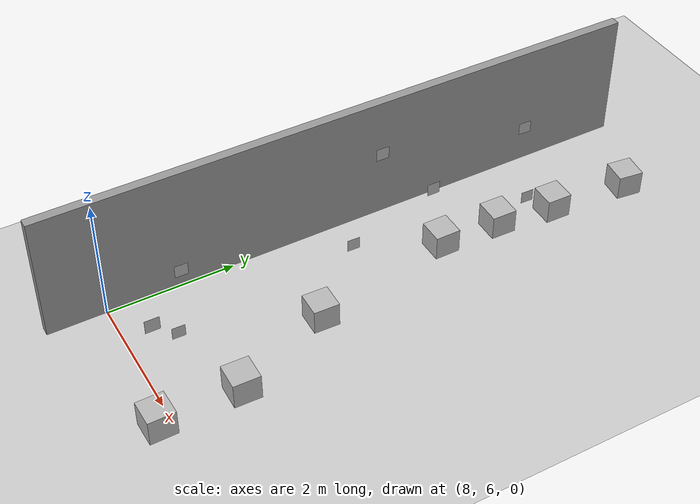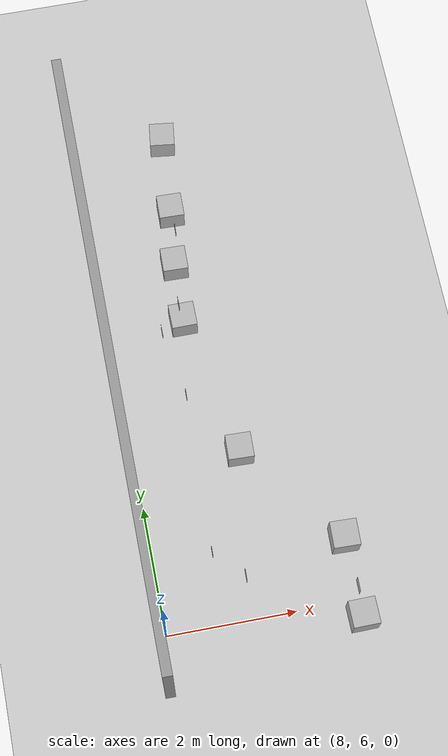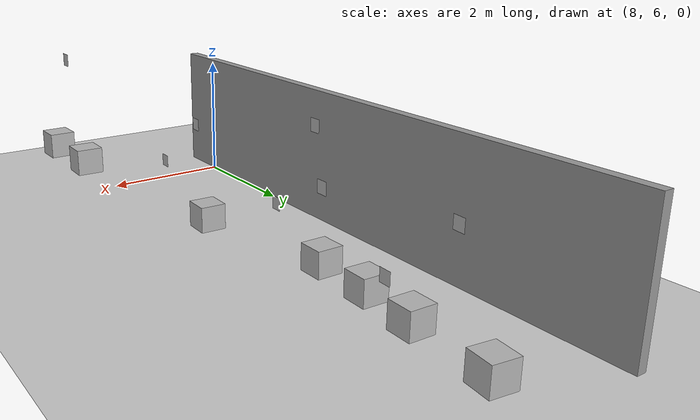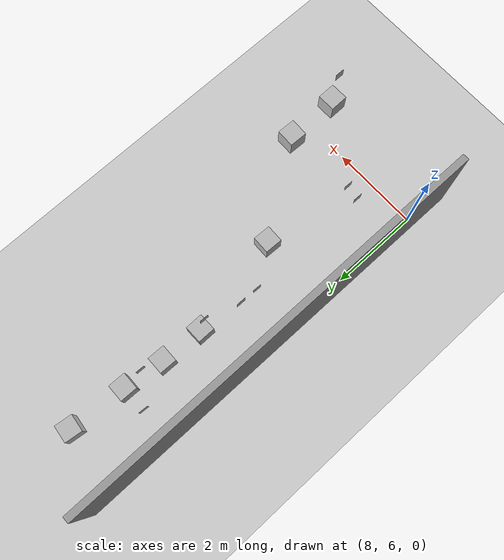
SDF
<sdf version="1.6">
 <world name="default">
  <model name="ground_plane">
   <static>1</static>
   <link name="link">
    <collision name="collision">
     <geometry><plane><normal>0 0 1</normal><size>300 300</size></plane></geometry>
     <surface>
      <contact><collide_bitmask>65535</collide_bitmask></contact>
      <friction><ode><mu>100</mu><mu2>50</mu2></ode></friction>
     </surface>
    </collision>
    <visual name="visual">
     <geometry><plane><normal>0 0 1</normal><size>100 100</size></plane></geometry>
     <material>
      <script><uri>file://media/materials/scripts/gazebo.material</uri><name>Gazebo/Grey</name></script>
     </material>
    </visual>
   </link>
  </model>
  <model name="Estanterias2">
   <link name="Wall_7">
    <pose>-9.54199 -5.19373 -0.244468 0 -0 1.5708</pose>
    <inertial>
     <inertia><ixx>0</ixx><ixy>0</ixy><ixz>0</ixz><iyy>0</iyy><iyz>0</iyz><izz>0</izz></inertia>
     <mass>0</mass>
    </inertial>
    <visual name="Wall_7_Visual">
     <pose>0 0 1.25 0 -0 0</pose>
     <geometry><box><size>9.74609 0.15 2.08966</size></box></geometry>
     <material>
      <script><uri>file://media/materials/scripts/gazebo.material</uri><name>Gazebo/Grey</name></script>
      <ambient>1 1 1 1</ambient>
      <shader type="pixel"/>
      <diffuse>0.7 0.7 0.7 1</diffuse>
      <specular>0.01 0.01 0.01 1</specular>
      <emissive>0 0 0 1</emissive>
     </material>
     <meta><layer>0</layer></meta>
    </visual>
    <collision name="Wall_7_Collision">
     <pose>0 0 1.25 0 -0 0</pose>
     <geometry><box><size>9.74609 0.15 2.08966</size></box></geometry>
     <surface>
      <friction>
       <ode><mu>1</mu><mu2>1</mu2><fdir1>0 0 0</fdir1><slip1>0</slip1><slip2>0</slip2></ode>
       <torsional>
        <coefficient>1</coefficient>
        <patch_radius>0</patch_radius>
        <surface_radius>0</surface_radius>
        <use_patch_radius>1</use_patch_radius>
        <ode><slip>0</slip></ode>
       </torsional>
      </friction>
      <bounce><restitution_coefficient>0</restitution_coefficient><threshold>1e+06</threshold></bounce>
      <contact>
       <collide_without_contact>0</collide_without_contact>
       <collide_without_contact_bitmask>1</collide_without_contact_bitmask>
       <collide_bitmask>1</collide_bitmask>
       <ode>
        <soft_cfm>0</soft_cfm>
        <soft_erp>0.2</soft_erp>
        <kp>1e+13</kp>
        <kd>1</kd>
        <max_vel>0.01</max_vel>
        <min_depth>0</min_depth>
       </ode>
       <bullet>
        <split_impulse>1</split_impulse>
        <split_impulse_penetration_threshold>-0.01</split_impulse_penetration_threshold>
        <soft_cfm>0</soft_cfm>
        <soft_erp>0.2</soft_erp>
        <kp>1e+13</kp>
        <kd>1</kd>
       </bullet>
      </contact>
     </surface>
    </collision>
   </link>
   <static>1</static>
   <pose>17.4434 15.1661 0 0 -0 0</pose>
  </model>
  <model name="CuboQR17">
   <link name="link">
    <pose>0 -0 1.69043 0 -0 0</pose>
    <inertial>
     <mass>0.39</mass>
     <inertia><ixx>0.00058</ixx><ixy>0</ixy><ixz>0</ixz><iyy>0.00058</iyy><iyz>0</iyz><izz>0.00019</izz></inertia>
    </inertial>
    <visual name="visual">
     <geometry><box><size>0.4 0.4 0.4</size></box></geometry>
     <material>
      <script>
       <uri>model://Caja/materials/scripts</uri>
       <uri>model://Caja/materials/textures</uri>
       <name>Caja/Diffuse</name>
      </script>
      <shader type="pixel"/>
     </material>
    </visual>
    <collision name="collision">
     <geometry><box><size>0.4 0.4 0.4</size></box></geometry>
     <surface>
      <friction>
       <ode><mu>1</mu><mu2>1</mu2><fdir1>0 0 0</fdir1><slip1>0</slip1><slip2>0</slip2></ode>
       <torsional>
        <coefficient>1</coefficient>
        <patch_radius>0</patch_radius>
        <surface_radius>0</surface_radius>
        <use_patch_radius>1</use_patch_radius>
        <ode><slip>0</slip></ode>
       </torsional>
      </friction>
      <bounce><restitution_coefficient>0</restitution_coefficient><threshold>1e+06</threshold></bounce>
      <contact>
       <collide_without_contact>0</collide_without_contact>
       <collide_without_contact_bitmask>1</collide_without_contact_bitmask>
       <collide_bitmask>1</collide_bitmask>
       <ode>
        <soft_cfm>0</soft_cfm>
        <soft_erp>0.2</soft_erp>
        <kp>1e+13</kp>
        <kd>1</kd>
        <max_vel>0.01</max_vel>
        <min_depth>0</min_depth>
       </ode>
       <bullet>
        <split_impulse>1</split_impulse>
        <split_impulse_penetration_threshold>-0.01</split_impulse_penetration_threshold>
        <soft_cfm>0</soft_cfm>
        <soft_erp>0.2</soft_erp>
        <kp>1e+13</kp>
        <kd>1</kd>
       </bullet>
      </contact>
     </surface>
    </collision>
   </link>
   <static>0</static>
   <pose>11.0829 13.9252 0.200011 1.5708 -2.1e-05 -1.69401</pose>
  </model>
  <model name="CuboQR14">
   <link name="link">
    <pose>-1.60696 0.16667 0.249987 0 -0 0</pose>
    <inertial>
     <mass>0.39</mass>
     <inertia><ixx>0.00058</ixx><ixy>0</ixy><ixz>0</ixz><iyy>0.00058</iyy><iyz>0</iyz><izz>0.00019</izz></inertia>
    </inertial>
    <visual name="visual">
     <geometry><box><size>0.4 0.4 0.4</size></box></geometry>
     <material>
      <script>
       <uri>model://Caja/materials/scripts</uri>
       <uri>model://Caja/materials/textures</uri>
       <name>Caja/Diffuse</name>
      </script>
      <shader type="pixel"/>
     </material>
    </visual>
    <collision name="collision">
     <geometry><box><size>0.4 0.4 0.4</size></box></geometry>
     <surface>
      <friction>
       <ode><mu>1</mu><mu2>1</mu2><fdir1>0 0 0</fdir1><slip1>0</slip1><slip2>0</slip2></ode>
       <torsional>
        <coefficient>1</coefficient>
        <patch_radius>0</patch_radius>
        <surface_radius>0</surface_radius>
        <use_patch_radius>1</use_patch_radius>
        <ode><slip>0</slip></ode>
       </torsional>
      </friction>
      <bounce><restitution_coefficient>0</restitution_coefficient><threshold>1e+06</threshold></bounce>
      <contact>
       <collide_without_contact>0</collide_without_contact>
       <collide_without_contact_bitmask>1</collide_without_contact_bitmask>
       <collide_bitmask>1</collide_bitmask>
       <ode>
        <soft_cfm>0</soft_cfm>
        <soft_erp>0.2</soft_erp>
        <kp>1e+13</kp>
        <kd>1</kd>
        <max_vel>0.01</max_vel>
        <min_depth>0</min_depth>
       </ode>
       <bullet>
        <split_impulse>1</split_impulse>
        <split_impulse_penetration_threshold>-0.01</split_impulse_penetration_threshold>
        <soft_cfm>0</soft_cfm>
        <soft_erp>0.2</soft_erp>
        <kp>1e+13</kp>
        <kd>1</kd>
       </bullet>
      </contact>
     </surface>
    </collision>
   </link>
   <static>0</static>
   <pose>10.9121 12.6266 -0.049994 1.3e-05 -0 -0.021</pose>
  </model>
  <model name="CuboQR15">
   <link name="link">
    <pose>-1.6512 -0.722187 0.249968 0 -0 0</pose>
    <inertial>
     <mass>0.39</mass>
     <inertia><ixx>0.00058</ixx><ixy>0</ixy><ixz>0</ixz><iyy>0.00058</iyy><iyz>0</iyz><izz>0.00019</izz></inertia>
    </inertial>
    <visual name="visual">
     <geometry><box><size>0.4 0.4 0.4</size></box></geometry>
     <material>
      <script>
       <uri>model://Caja/materials/scripts</uri>
       <uri>model://Caja/materials/textures</uri>
       <name>Caja/Diffuse</name>
      </script>
      <shader type="pixel"/>
     </material>
    </visual>
    <collision name="collision">
     <geometry><box><size>0.4 0.4 0.4</size></box></geometry>
     <surface>
      <friction>
       <ode><mu>1</mu><mu2>1</mu2><fdir1>0 0 0</fdir1><slip1>0</slip1><slip2>0</slip2></ode>
       <torsional>
        <coefficient>1</coefficient>
        <patch_radius>0</patch_radius>
        <surface_radius>0</surface_radius>
        <use_patch_radius>1</use_patch_radius>
        <ode><slip>0</slip></ode>
       </torsional>
      </friction>
      <bounce><restitution_coefficient>0</restitution_coefficient><threshold>1e+06</threshold></bounce>
      <contact>
       <collide_without_contact>0</collide_without_contact>
       <collide_without_contact_bitmask>1</collide_without_contact_bitmask>
       <collide_bitmask>1</collide_bitmask>
       <ode>
        <soft_cfm>0</soft_cfm>
        <soft_erp>0.2</soft_erp>
        <kp>1e+13</kp>
        <kd>1</kd>
        <max_vel>0.01</max_vel>
        <min_depth>0</min_depth>
       </ode>
       <bullet>
        <split_impulse>1</split_impulse>
        <split_impulse_penetration_threshold>-0.01</split_impulse_penetration_threshold>
        <soft_cfm>0</soft_cfm>
        <soft_erp>0.2</soft_erp>
        <kp>1e+13</kp>
        <kd>1</kd>
       </bullet>
      </contact>
     </surface>
    </collision>
   </link>
   <static>0</static>
   <pose>10.8665 12.5785 -0.049979 -1.6e-05 -0 -0.020546</pose>
  </model>
  <model name="Plano15">
   <link name="link">
    <gravity>0</gravity>
    <pose>0.28671 -1.34804 0.25 0 -0 0</pose>
    <inertial>
     <mass>1e-06</mass>
     <inertia><ixx>0.00058</ixx><ixy>0</ixy><ixz>0</ixz><iyy>0.00058</iyy><iyz>0</iyz><izz>0.00019</izz></inertia>
    </inertial>
    <visual name="visual">
     <geometry><box><size>0.2 1e-06 0.2</size></box></geometry>
     <material>
      <script>
       <uri>model://Plano15/materials/scripts</uri>
       <uri>model://Plano15/materials/textures</uri>
       <name>Plano15/Diffuse</name>
      </script>
      <shader type="pixel"/>
     </material>
     <cast_shadows>0</cast_shadows>
    </visual>
    <collision name="collision">
     <geometry><box><size>0.2 1e-06 0.2</size></box></geometry>
     <surface>
      <friction>
       <ode><mu>1</mu><mu2>1</mu2><fdir1>0 0 0</fdir1><slip1>0</slip1><slip2>0</slip2></ode>
       <torsional>
        <coefficient>1</coefficient>
        <patch_radius>0</patch_radius>
        <surface_radius>0</surface_radius>
        <use_patch_radius>1</use_patch_radius>
        <ode><slip>0</slip></ode>
       </torsional>
      </friction>
      <bounce><restitution_coefficient>0</restitution_coefficient><threshold>1e+06</threshold></bounce>
      <contact>
       <collide_without_contact>0</collide_without_contact>
       <collide_without_contact_bitmask>1</collide_without_contact_bitmask>
       <collide_bitmask>1</collide_bitmask>
       <ode>
        <soft_cfm>0</soft_cfm>
        <soft_erp>0.2</soft_erp>
        <kp>1e+13</kp>
        <kd>1</kd>
        <max_vel>0.01</max_vel>
        <min_depth>0</min_depth>
       </ode>
       <bullet>
        <split_impulse>1</split_impulse>
        <split_impulse_penetration_threshold>-0.01</split_impulse_penetration_threshold>
        <soft_cfm>0</soft_cfm>
        <soft_erp>0.2</soft_erp>
        <kp>1e+13</kp>
        <kd>1</kd>
       </bullet>
      </contact>
     </surface>
    </collision>
   </link>
   <static>0</static>
   <pose>10.6606 12.5838 0.25794 0 0 -1.60068</pose>
  </model>
  <model name="Plano14">
   <link name="link">
    <gravity>0</gravity>
    <pose>1e-06 -2.15575 0.25 0 -0 0</pose>
    <inertial>
     <mass>1e-06</mass>
     <inertia><ixx>0.00058</ixx><ixy>0</ixy><ixz>0</ixz><iyy>0.00058</iyy><iyz>0</iyz><izz>0.00019</izz></inertia>
    </inertial>
    <visual name="visual">
     <geometry><box><size>0.2 1e-06 0.2</size></box></geometry>
     <material>
      <script>
       <uri>model://Plano14/materials/scripts</uri>
       <uri>model://Plano14/materials/textures</uri>
       <name>Plano14/Diffuse</name>
      </script>
      <shader type="pixel"/>
     </material>
     <cast_shadows>0</cast_shadows>
    </visual>
    <collision name="collision">
     <geometry><box><size>0.2 1e-06 0.2</size></box></geometry>
     <surface>
      <friction>
       <ode><mu>1</mu><mu2>1</mu2><fdir1>0 0 0</fdir1><slip1>0</slip1><slip2>0</slip2></ode>
       <torsional>
        <coefficient>1</coefficient>
        <patch_radius>0</patch_radius>
        <surface_radius>0</surface_radius>
        <use_patch_radius>1</use_patch_radius>
        <ode><slip>0</slip></ode>
       </torsional>
      </friction>
      <bounce><restitution_coefficient>0</restitution_coefficient><threshold>1e+06</threshold></bounce>
      <contact>
       <collide_without_contact>0</collide_without_contact>
       <collide_without_contact_bitmask>1</collide_without_contact_bitmask>
       <collide_bitmask>1</collide_bitmask>
       <ode>
        <soft_cfm>0</soft_cfm>
        <soft_erp>0.2</soft_erp>
        <kp>1e+13</kp>
        <kd>1</kd>
        <max_vel>0.01</max_vel>
        <min_depth>0</min_depth>
       </ode>
       <bullet>
        <split_impulse>1</split_impulse>
        <split_impulse_penetration_threshold>-0.01</split_impulse_penetration_threshold>
        <soft_cfm>0</soft_cfm>
        <soft_erp>0.2</soft_erp>
        <kp>1e+13</kp>
        <kd>1</kd>
       </bullet>
      </contact>
     </surface>
    </collision>
   </link>
   <static>0</static>
   <pose>10.7078 12.6284 0.90675 0 0 -1.62849</pose>
  </model>
  <model name="CuboQR27">
   <link name="link">
    <pose>-1.75974 0.132439 0.250007 -0 -0 -0</pose>
    <inertial>
     <mass>0.39</mass>
     <inertia><ixx>0.00058</ixx><ixy>0</ixy><ixz>0</ixz><iyy>0.00058</iyy><iyz>0</iyz><izz>0.00019</izz></inertia>
    </inertial>
    <visual name="visual">
     <geometry><box><size>0.4 0.4 0.4</size></box></geometry>
     <material>
      <script>
       <uri>model://Caja/materials/scripts</uri>
       <uri>model://Caja/materials/textures</uri>
       <name>Caja/Diffuse</name>
      </script>
      <shader type="pixel"/>
     </material>
    </visual>
    <collision name="collision">
     <geometry><box><size>0.4 0.4 0.4</size></box></geometry>
     <surface>
      <friction>
       <ode><mu>1</mu><mu2>1</mu2><fdir1>0 0 0</fdir1><slip1>0</slip1><slip2>0</slip2></ode>
       <torsional>
        <coefficient>1</coefficient>
        <patch_radius>0</patch_radius>
        <surface_radius>0</surface_radius>
        <use_patch_radius>1</use_patch_radius>
        <ode><slip>0</slip></ode>
       </torsional>
      </friction>
      <bounce><restitution_coefficient>0</restitution_coefficient><threshold>1e+06</threshold></bounce>
      <contact>
       <collide_without_contact>0</collide_without_contact>
       <collide_without_contact_bitmask>1</collide_without_contact_bitmask>
       <collide_bitmask>1</collide_bitmask>
       <ode>
        <soft_cfm>0</soft_cfm>
        <soft_erp>0.2</soft_erp>
        <kp>1e+13</kp>
        <kd>1</kd>
        <max_vel>0.01</max_vel>
        <min_depth>0</min_depth>
       </ode>
       <bullet>
        <split_impulse>1</split_impulse>
        <split_impulse_penetration_threshold>-0.01</split_impulse_penetration_threshold>
        <soft_cfm>0</soft_cfm>
        <soft_erp>0.2</soft_erp>
        <kp>1e+13</kp>
        <kd>1</kd>
       </bullet>
      </contact>
     </surface>
    </collision>
   </link>
   <static>0</static>
   <pose>10.9203 10.7818 -0.050003 -2.4e-05 0 0.004224</pose>
  </model>
  <model name="Plano27">
   <link name="link">
    <gravity>0</gravity>
    <pose>-0 -1.62853 0.25 0 -0 0</pose>
    <inertial>
     <mass>1e-06</mass>
     <inertia><ixx>0.00058</ixx><ixy>0</ixy><ixz>0</ixz><iyy>0.00058</iyy><iyz>0</iyz><izz>0.00019</izz></inertia>
    </inertial>
    <visual name="visual">
     <geometry><box><size>0.2 1e-06 0.2</size></box></geometry>
     <material>
      <script>
       <uri>model://Plano27/materials/scripts</uri>
       <uri>model://Plano27/materials/textures</uri>
       <name>Plano27/Diffuse</name>
      </script>
      <shader type="pixel"/>
     </material>
     <cast_shadows>0</cast_shadows>
    </visual>
    <collision name="collision">
     <geometry><box><size>0.2 1e-06 0.2</size></box></geometry>
     <surface>
      <friction>
       <ode><mu>1</mu><mu2>1</mu2><fdir1>0 0 0</fdir1><slip1>0</slip1><slip2>0</slip2></ode>
       <torsional>
        <coefficient>1</coefficient>
        <patch_radius>0</patch_radius>
        <surface_radius>0</surface_radius>
        <use_patch_radius>1</use_patch_radius>
        <ode><slip>0</slip></ode>
       </torsional>
      </friction>
      <bounce><restitution_coefficient>0</restitution_coefficient><threshold>1e+06</threshold></bounce>
      <contact>
       <collide_without_contact>0</collide_without_contact>
       <collide_without_contact_bitmask>1</collide_without_contact_bitmask>
       <collide_bitmask>1</collide_bitmask>
       <ode>
        <soft_cfm>0</soft_cfm>
        <soft_erp>0.2</soft_erp>
        <kp>1e+13</kp>
        <kd>1</kd>
        <max_vel>0.01</max_vel>
        <min_depth>0</min_depth>
       </ode>
       <bullet>
        <split_impulse>1</split_impulse>
        <split_impulse_penetration_threshold>-0.01</split_impulse_penetration_threshold>
        <soft_cfm>0</soft_cfm>
        <soft_erp>0.2</soft_erp>
        <kp>1e+13</kp>
        <kd>1</kd>
       </bullet>
      </contact>
     </surface>
    </collision>
   </link>
   <static>0</static>
   <pose>10.7156 10.7789 0.90002 0 0 -1.57306</pose>
  </model>
  <model name="Plano29">
   <link name="link">
    <gravity>0</gravity>
    <pose>-0 -2.02242 0.25 0 -0 0</pose>
    <inertial>
     <mass>1e-06</mass>
     <inertia><ixx>0.00058</ixx><ixy>0</ixy><ixz>0</ixz><iyy>0.00058</iyy><iyz>0</iyz><izz>0.00019</izz></inertia>
    </inertial>
    <visual name="visual">
     <geometry><box><size>0.2 1e-06 0.2</size></box></geometry>
     <material>
      <script>
       <uri>model://Plano29/materials/scripts</uri>
       <uri>model://Plano29/materials/textures</uri>
       <name>Plano29/Diffuse</name>
      </script>
      <shader type="pixel"/>
     </material>
     <cast_shadows>0</cast_shadows>
    </visual>
    <collision name="collision">
     <geometry><box><size>0.2 1e-06 0.2</size></box></geometry>
     <surface>
      <friction>
       <ode><mu>1</mu><mu2>1</mu2><fdir1>0 0 0</fdir1><slip1>0</slip1><slip2>0</slip2></ode>
       <torsional>
        <coefficient>1</coefficient>
        <patch_radius>0</patch_radius>
        <surface_radius>0</surface_radius>
        <use_patch_radius>1</use_patch_radius>
        <ode><slip>0</slip></ode>
       </torsional>
      </friction>
      <bounce><restitution_coefficient>0</restitution_coefficient><threshold>1e+06</threshold></bounce>
      <contact>
       <collide_without_contact>0</collide_without_contact>
       <collide_without_contact_bitmask>1</collide_without_contact_bitmask>
       <collide_bitmask>1</collide_bitmask>
       <ode>
        <soft_cfm>0</soft_cfm>
        <soft_erp>0.2</soft_erp>
        <kp>1e+13</kp>
        <kd>1</kd>
        <max_vel>0.01</max_vel>
        <min_depth>0</min_depth>
       </ode>
       <bullet>
        <split_impulse>1</split_impulse>
        <split_impulse_penetration_threshold>-0.01</split_impulse_penetration_threshold>
        <soft_cfm>0</soft_cfm>
        <soft_erp>0.2</soft_erp>
        <kp>1e+13</kp>
        <kd>1</kd>
       </bullet>
      </contact>
     </surface>
    </collision>
   </link>
   <static>0</static>
   <pose>10.7522 10.1107 1.5598 0 0 -1.57894</pose>
  </model>
  <model name="Plano12">
   <link name="link">
    <gravity>0</gravity>
    <pose>-0 -1.74134 0.25 0 -0 0</pose>
    <inertial>
     <mass>1e-06</mass>
     <inertia><ixx>0.00058</ixx><ixy>0</ixy><ixz>0</ixz><iyy>0.00058</iyy><iyz>0</iyz><izz>0.00019</izz></inertia>
    </inertial>
    <visual name="visual">
     <geometry><box><size>0.2 1e-06 0.2</size></box></geometry>
     <material>
      <script>
       <uri>model://Plano12/materials/scripts</uri>
       <uri>model://Plano12/materials/textures</uri>
       <name>Plano12/Diffuse</name>
      </script>
      <shader type="pixel"/>
     </material>
     <cast_shadows>0</cast_shadows>
    </visual>
    <collision name="collision">
     <geometry><box><size>0.2 1e-06 0.2</size></box></geometry>
     <surface>
      <friction>
       <ode><mu>1</mu><mu2>1</mu2><fdir1>0 0 0</fdir1><slip1>0</slip1><slip2>0</slip2></ode>
       <torsional>
        <coefficient>1</coefficient>
        <patch_radius>0</patch_radius>
        <surface_radius>0</surface_radius>
        <use_patch_radius>1</use_patch_radius>
        <ode><slip>0</slip></ode>
       </torsional>
      </friction>
      <bounce><restitution_coefficient>0</restitution_coefficient><threshold>1e+06</threshold></bounce>
      <contact>
       <collide_without_contact>0</collide_without_contact>
       <collide_without_contact_bitmask>1</collide_without_contact_bitmask>
       <collide_bitmask>1</collide_bitmask>
       <ode>
        <soft_cfm>0</soft_cfm>
        <soft_erp>0.2</soft_erp>
        <kp>1e+13</kp>
        <kd>1</kd>
        <max_vel>0.01</max_vel>
        <min_depth>0</min_depth>
       </ode>
       <bullet>
        <split_impulse>1</split_impulse>
        <split_impulse_penetration_threshold>-0.01</split_impulse_penetration_threshold>
        <soft_cfm>0</soft_cfm>
        <soft_erp>0.2</soft_erp>
        <kp>1e+13</kp>
        <kd>1</kd>
       </bullet>
      </contact>
     </surface>
    </collision>
   </link>
   <static>0</static>
   <pose>10.7037 9.472 0.272564 0 0 -1.59709</pose>
  </model>
  <model name="CuboQR12">
   <link name="link">
    <pose>-1.25153 -0.898488 0.250001 -0 -0 -0</pose>
    <inertial>
     <mass>0.39</mass>
     <inertia><ixx>0.00058</ixx><ixy>0</ixy><ixz>0</ixz><iyy>0.00058</iyy><iyz>0</iyz><izz>0.00019</izz></inertia>
    </inertial>
    <visual name="visual">
     <geometry><box><size>0.4 0.4 0.4</size></box></geometry>
     <material>
      <script>
       <uri>model://Caja/materials/scripts</uri>
       <uri>model://Caja/materials/textures</uri>
       <name>Caja/Diffuse</name>
      </script>
      <shader type="pixel"/>
     </material>
    </visual>
    <collision name="collision">
     <geometry><box><size>0.4 0.4 0.4</size></box></geometry>
     <surface>
      <friction>
       <ode><mu>1</mu><mu2>1</mu2><fdir1>0 0 0</fdir1><slip1>0</slip1><slip2>0</slip2></ode>
       <torsional>
        <coefficient>1</coefficient>
        <patch_radius>0</patch_radius>
        <surface_radius>0</surface_radius>
        <use_patch_radius>1</use_patch_radius>
        <ode><slip>0</slip></ode>
       </torsional>
      </friction>
      <bounce><restitution_coefficient>0</restitution_coefficient><threshold>1e+06</threshold></bounce>
      <contact>
       <collide_without_contact>0</collide_without_contact>
       <collide_without_contact_bitmask>1</collide_without_contact_bitmask>
       <collide_bitmask>1</collide_bitmask>
       <ode>
        <soft_cfm>0</soft_cfm>
        <soft_erp>0.2</soft_erp>
        <kp>1e+13</kp>
        <kd>1</kd>
        <max_vel>0.01</max_vel>
        <min_depth>0</min_depth>
       </ode>
       <bullet>
        <split_impulse>1</split_impulse>
        <split_impulse_penetration_threshold>-0.01</split_impulse_penetration_threshold>
        <soft_cfm>0</soft_cfm>
        <soft_erp>0.2</soft_erp>
        <kp>1e+13</kp>
        <kd>1</kd>
       </bullet>
      </contact>
     </surface>
    </collision>
   </link>
   <static>0</static>
   <pose>10.9042 9.46915 -0.049996 8e-06 -0 -0.031544</pose>
  </model>
  <model name="Plano20">
   <link name="link">
    <gravity>0</gravity>
    <pose>0.051279 -1.40422 0.25 0 -0 0</pose>
    <inertial>
     <mass>1e-06</mass>
     <inertia><ixx>0.00058</ixx><ixy>0</ixy><ixz>0</ixz><iyy>0.00058</iyy><iyz>0</iyz><izz>0.00019</izz></inertia>
    </inertial>
    <visual name="visual">
     <geometry><box><size>0.2 1e-06 0.2</size></box></geometry>
     <material>
      <script>
       <uri>model://Plano20/materials/scripts</uri>
       <uri>model://Plano20/materials/textures</uri>
       <name>Plano20/Diffuse</name>
      </script>
      <shader type="pixel"/>
     </material>
     <cast_shadows>0</cast_shadows>
    </visual>
    <collision name="collision">
     <geometry><box><size>0.2 1e-06 0.2</size></box></geometry>
     <surface>
      <friction>
       <ode><mu>1</mu><mu2>1</mu2><fdir1>0 0 0</fdir1><slip1>0</slip1><slip2>0</slip2></ode>
       <torsional>
        <coefficient>1</coefficient>
        <patch_radius>0</patch_radius>
        <surface_radius>0</surface_radius>
        <use_patch_radius>1</use_patch_radius>
        <ode><slip>0</slip></ode>
       </torsional>
      </friction>
      <bounce><restitution_coefficient>0</restitution_coefficient><threshold>1e+06</threshold></bounce>
      <contact>
       <collide_without_contact>0</collide_without_contact>
       <collide_without_contact_bitmask>1</collide_without_contact_bitmask>
       <collide_bitmask>1</collide_bitmask>
       <ode>
        <soft_cfm>0</soft_cfm>
        <soft_erp>0.2</soft_erp>
        <kp>1e+13</kp>
        <kd>1</kd>
        <max_vel>0.01</max_vel>
        <min_depth>0</min_depth>
       </ode>
       <bullet>
        <split_impulse>1</split_impulse>
        <split_impulse_penetration_threshold>-0.01</split_impulse_penetration_threshold>
        <soft_cfm>0</soft_cfm>
        <soft_erp>0.2</soft_erp>
        <kp>1e+13</kp>
        <kd>1</kd>
       </bullet>
      </contact>
     </surface>
    </collision>
   </link>
   <static>0</static>
   <pose>10.7236 6.60015 0.262989 0 0 -1.59313</pose>
  </model>
  <model name="Plano26_0">
   <link name="link">
    <gravity>0</gravity>
    <pose>0.21886 -1.85494 0.25 0 -0 0</pose>
    <inertial>
     <mass>1e-06</mass>
     <inertia><ixx>0.00058</ixx><ixy>0</ixy><ixz>0</ixz><iyy>0.00058</iyy><iyz>0</iyz><izz>0.00019</izz></inertia>
    </inertial>
    <visual name="visual">
     <geometry><box><size>0.2 1e-06 0.2</size></box></geometry>
     <material>
      <script>
       <uri>model://Plano26/materials/scripts</uri>
       <uri>model://Plano26/materials/textures</uri>
       <name>Plano26/Diffuse</name>
      </script>
      <shader type="pixel"/>
     </material>
     <cast_shadows>0</cast_shadows>
    </visual>
    <collision name="collision">
     <geometry><box><size>0.2 1e-06 0.2</size></box></geometry>
     <surface>
      <friction>
       <ode><mu>1</mu><mu2>1</mu2><fdir1>0 0 0</fdir1><slip1>0</slip1><slip2>0</slip2></ode>
       <torsional>
        <coefficient>1</coefficient>
        <patch_radius>0</patch_radius>
        <surface_radius>0</surface_radius>
        <use_patch_radius>1</use_patch_radius>
        <ode><slip>0</slip></ode>
       </torsional>
      </friction>
      <bounce><restitution_coefficient>0</restitution_coefficient><threshold>1e+06</threshold></bounce>
      <contact>
       <collide_without_contact>0</collide_without_contact>
       <collide_without_contact_bitmask>1</collide_without_contact_bitmask>
       <collide_bitmask>1</collide_bitmask>
       <ode>
        <soft_cfm>0</soft_cfm>
        <soft_erp>0.2</soft_erp>
        <kp>1e+13</kp>
        <kd>1</kd>
        <max_vel>0.01</max_vel>
        <min_depth>0</min_depth>
       </ode>
       <bullet>
        <split_impulse>1</split_impulse>
        <split_impulse_penetration_threshold>-0.01</split_impulse_penetration_threshold>
        <soft_cfm>0</soft_cfm>
        <soft_erp>0.2</soft_erp>
        <kp>1e+13</kp>
        <kd>1</kd>
       </bullet>
      </contact>
     </surface>
    </collision>
   </link>
   <static>0</static>
   <pose>10.7205 7.06672 0.90647 0 0 -1.58759</pose>
  </model>
  <model name="Plano26">
   <link name="link">
    <gravity>0</gravity>
    <pose>0.259182 -0.023465 0.724825 0 -0 0</pose>
    <inertial>
     <mass>1e-06</mass>
     <inertia><ixx>0.00058</ixx><ixy>0</ixy><ixz>0</ixz><iyy>0.00058</iyy><iyz>0</iyz><izz>0.00019</izz></inertia>
    </inertial>
    <visual name="visual">
     <geometry><box><size>0.2 1e-06 0.2</size></box></geometry>
     <material>
      <script>
       <uri>model://Plano26/materials/scripts</uri>
       <uri>model://Plano26/materials/textures</uri>
       <name>Plano26/Diffuse</name>
      </script>
      <shader type="pixel"/>
     </material>
     <cast_shadows>0</cast_shadows>
    </visual>
    <collision name="collision">
     <geometry><box><size>0.2 1e-06 0.2</size></box></geometry>
     <surface>
      <friction>
       <ode><mu>1</mu><mu2>1</mu2><fdir1>0 0 0</fdir1><slip1>0</slip1><slip2>0</slip2></ode>
       <torsional>
        <coefficient>1</coefficient>
        <patch_radius>0</patch_radius>
        <surface_radius>0</surface_radius>
        <use_patch_radius>1</use_patch_radius>
        <ode><slip>0</slip></ode>
       </torsional>
      </friction>
      <bounce><restitution_coefficient>0</restitution_coefficient><threshold>1e+06</threshold></bounce>
      <contact>
       <collide_without_contact>0</collide_without_contact>
       <collide_without_contact_bitmask>1</collide_without_contact_bitmask>
       <collide_bitmask>1</collide_bitmask>
       <ode>
        <soft_cfm>0</soft_cfm>
        <soft_erp>0.2</soft_erp>
        <kp>1e+13</kp>
        <kd>1</kd>
        <max_vel>0.01</max_vel>
        <min_depth>0</min_depth>
       </ode>
       <bullet>
        <split_impulse>1</split_impulse>
        <split_impulse_penetration_threshold>-0.01</split_impulse_penetration_threshold>
        <soft_cfm>0</soft_cfm>
        <soft_erp>0.2</soft_erp>
        <kp>1e+13</kp>
        <kd>1</kd>
       </bullet>
      </contact>
     </surface>
    </collision>
   </link>
   <static>0</static>
   <pose>10.7123 6.04698 1.56042 0 0 -1.57945</pose>
  </model>
  <model name="CuboQR26">
   <link name="link">
    <pose>0.664542 -0.243367 0.336399 0 -0 0.010192</pose>
    <inertial>
     <mass>0.39</mass>
     <inertia><ixx>0.00058</ixx><ixy>0</ixy><ixz>0</ixz><iyy>0.00058</iyy><iyz>0</iyz><izz>0.00019</izz></inertia>
    </inertial>
    <visual name="visual">
     <geometry><box><size>0.4 0.4 0.4</size></box></geometry>
     <material>
      <script>
       <uri>model://Caja/materials/scripts</uri>
       <uri>model://Caja/materials/textures</uri>
       <name>Caja/Diffuse</name>
      </script>
      <shader type="pixel"/>
     </material>
    </visual>
    <collision name="collision">
     <geometry><box><size>0.4 0.4 0.4</size></box></geometry>
     <surface>
      <friction>
       <ode><mu>1</mu><mu2>1</mu2><fdir1>0 0 0</fdir1><slip1>0</slip1><slip2>0</slip2></ode>
       <torsional>
        <coefficient>1</coefficient>
        <patch_radius>0</patch_radius>
        <surface_radius>0</surface_radius>
        <use_patch_radius>1</use_patch_radius>
        <ode><slip>0</slip></ode>
       </torsional>
      </friction>
      <bounce><restitution_coefficient>0</restitution_coefficient><threshold>1e+06</threshold></bounce>
      <contact>
       <collide_without_contact>0</collide_without_contact>
       <collide_without_contact_bitmask>1</collide_without_contact_bitmask>
       <collide_bitmask>1</collide_bitmask>
       <ode>
        <soft_cfm>0</soft_cfm>
        <soft_erp>0.2</soft_erp>
        <kp>1e+13</kp>
        <kd>1</kd>
        <max_vel>0.01</max_vel>
        <min_depth>0</min_depth>
       </ode>
       <bullet>
        <split_impulse>1</split_impulse>
        <split_impulse_penetration_threshold>-0.01</split_impulse_penetration_threshold>
        <soft_cfm>0</soft_cfm>
        <soft_erp>0.2</soft_erp>
        <kp>1e+13</kp>
        <kd>1</kd>
       </bullet>
      </contact>
     </surface>
    </collision>
   </link>
   <static>0</static>
   <pose>11.1776 7.05952 0.190021 1.56059 -1.55472 -1.5895</pose>
  </model>
  <model name="CuboQR20">
   <link name="link">
    <pose>-0.727301 -0.980706 0.197448 -0.030889 0.015573 0.01146</pose>
    <inertial>
     <mass>0.39</mass>
     <inertia><ixx>0.00058</ixx><ixy>0</ixy><ixz>0</ixz><iyy>0.00058</iyy><iyz>0</iyz><izz>0.00019</izz></inertia>
    </inertial>
    <visual name="visual">
     <geometry><box><size>0.4 0.4 0.4</size></box></geometry>
     <material>
      <script>
       <uri>model://Caja/materials/scripts</uri>
       <uri>model://Caja/materials/textures</uri>
       <name>Caja/Diffuse</name>
      </script>
      <shader type="pixel"/>
     </material>
    </visual>
    <collision name="collision">
     <geometry><box><size>0.4 0.4 0.4</size></box></geometry>
     <surface>
      <friction>
       <ode><mu>1</mu><mu2>1</mu2><fdir1>0 0 0</fdir1><slip1>0</slip1><slip2>0</slip2></ode>
       <torsional>
        <coefficient>1</coefficient>
        <patch_radius>0</patch_radius>
        <surface_radius>0</surface_radius>
        <use_patch_radius>1</use_patch_radius>
        <ode><slip>0</slip></ode>
       </torsional>
      </friction>
      <bounce><restitution_coefficient>0</restitution_coefficient><threshold>1e+06</threshold></bounce>
      <contact>
       <collide_without_contact>0</collide_without_contact>
       <collide_without_contact_bitmask>1</collide_without_contact_bitmask>
       <collide_bitmask>1</collide_bitmask>
       <ode>
        <soft_cfm>0</soft_cfm>
        <soft_erp>0.2</soft_erp>
        <kp>1e+13</kp>
        <kd>1</kd>
        <max_vel>0.01</max_vel>
        <min_depth>0</min_depth>
       </ode>
       <bullet>
        <split_impulse>1</split_impulse>
        <split_impulse_penetration_threshold>-0.01</split_impulse_penetration_threshold>
        <soft_cfm>0</soft_cfm>
        <soft_erp>0.2</soft_erp>
        <kp>1e+13</kp>
        <kd>1</kd>
       </bullet>
      </contact>
     </surface>
    </collision>
   </link>
   <static>0</static>
   <pose>10.6882 6.60289 0.109466 -0.633893 1.55147 -0.653232</pose>
  </model>
 </world>
</sdf>
